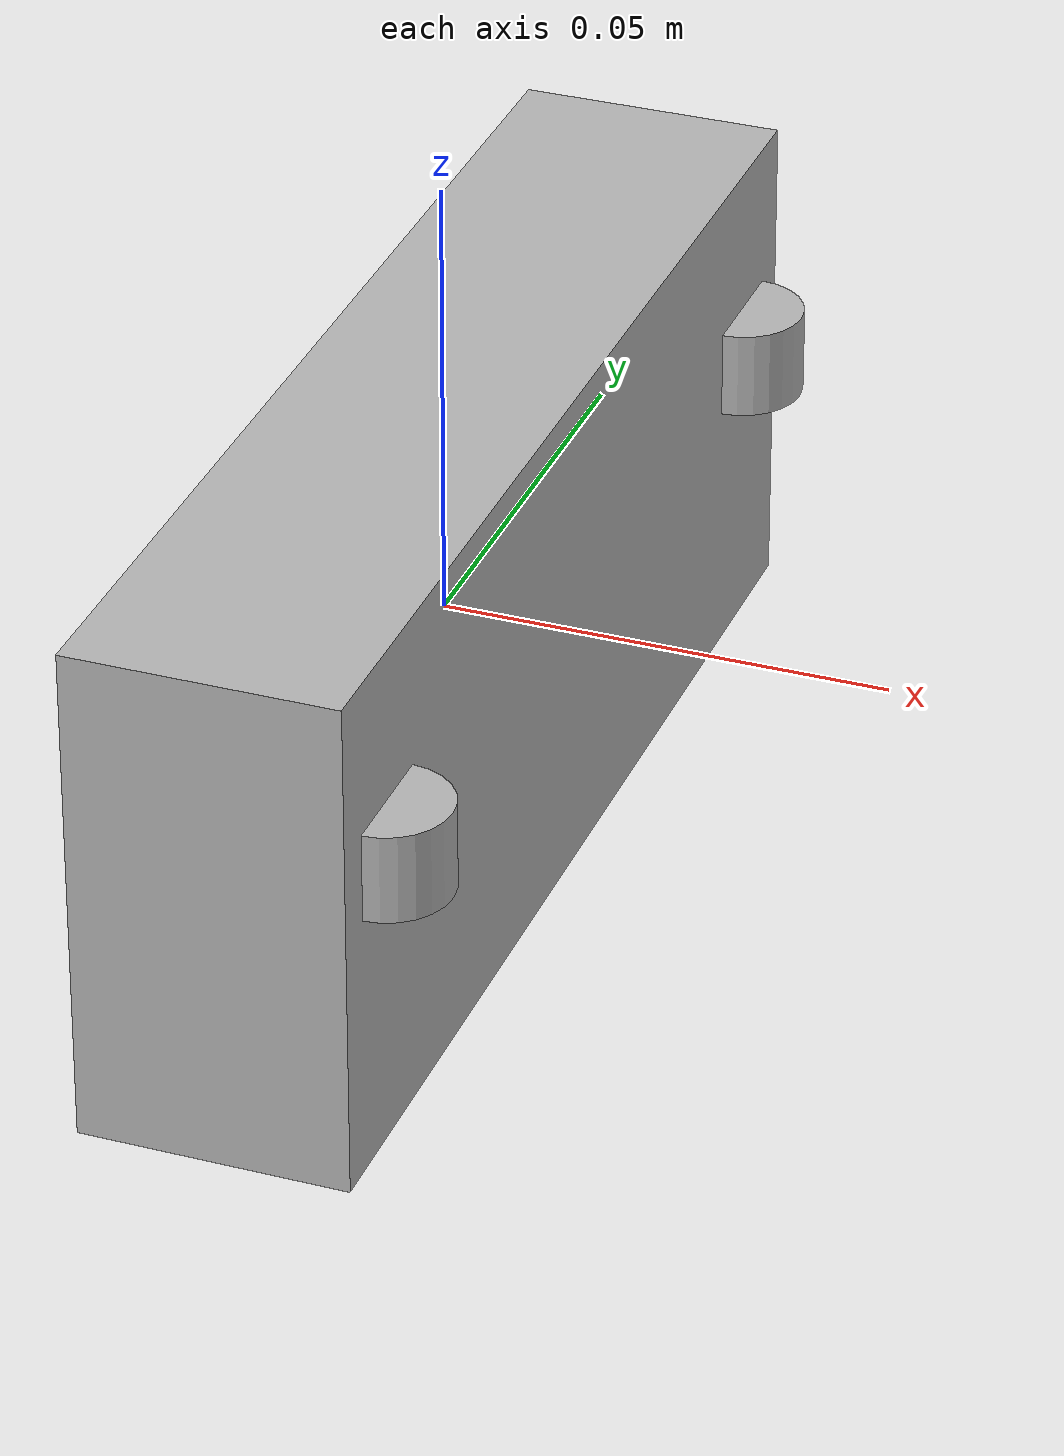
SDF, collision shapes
<sdf version='1.7'>
  <model name='vi_camera'>
    <link name='link'>
      <inertial>
        <pose>0.015 0.018333 0.0065 0 -0 0</pose>
        <mass>3e-05</mass>
        <inertia>
          <ixx>4.08067e-06</ixx>
          <ixy>-2.75038e-20</ixy>
          <ixz>-9.75081e-21</ixz>
          <iyy>4e-06</iyy>
          <iyz>-1.19184e-20</iyz>
          <izz>4.08067e-06</izz>
        </inertia>
      </inertial>
      <collision name='link_fixed_joint_lump__vi_sensor/vi_sensor_link_collision'>
        <pose>0 0 0 0 -0 0</pose>
        <geometry>
          <box>
            <size>0.03 0.133 0.057</size>
          </box>
        </geometry>
      </collision>
      <collision name='link_fixed_joint_lump__vi_sensor/camera_depth_link_collision_1'>
        <pose>0.015 0.055 0.0065 0 -0 0</pose>
        <geometry>
          <cylinder>
            <length>0.01</length>
            <radius>0.007</radius>
          </cylinder>
        </geometry>
        <surface>
          <contact>
            <ode/>
          </contact>
          <friction>
            <ode/>
          </friction>
        </surface>
      </collision>
      <collision name='link_fixed_joint_lump__vi_sensor/camera_left_link_collision_2'>
        <pose>0.015 0.055 0.0065 0 -0 0</pose>
        <geometry>
          <cylinder>
            <length>0.01</length>
            <radius>0.007</radius>
          </cylinder>
        </geometry>
        <surface>
          <contact>
            <ode/>
          </contact>
          <friction>
            <ode/>
          </friction>
        </surface>
      </collision>
      <collision name='link_fixed_joint_lump__vi_sensor/camera_right_link_collision_3'>
        <pose>0.015 -0.055 0.0065 0 -0 0</pose>
        <geometry>
          <cylinder>
            <length>0.01</length>
            <radius>0.007</radius>
          </cylinder>
        </geometry>
      </collision>
      <visual name='link_fixed_joint_lump__vi_sensor/vi_sensor_link_visual'>
        <pose>0 0 0 0 -0 0</pose>
        <geometry>
          <mesh>
            <scale>1 1 1</scale>
            <uri>model://vi_camera/meshes/vi_camera.dae</uri>
          </mesh>
        </geometry>
      </visual>
      <visual name='link_fixed_joint_lump__vi_sensor/camera_left_link_visual_1'>
        <pose>0.015 0.055 0.0065 0 -0 0</pose>
        <geometry>
          <cylinder>
            <length>0.01</length>
            <radius>0.007</radius>
          </cylinder>
        </geometry>
      </visual>
      <visual name='link_fixed_joint_lump__vi_sensor/camera_right_link_visual_2'>
        <pose>0.015 -0.055 0.0065 0 -0 0</pose>
        <geometry>
          <cylinder>
            <length>0.01</length>
            <radius>0.007</radius>
          </cylinder>
        </geometry>
      </visual>
      <sensor name='vi_sensor_camera_depth' type='depth'>
        <always_on>1</always_on>
        <update_rate>30</update_rate>
        <camera>
          <horizontal_fov>2</horizontal_fov>
          <image>
            <format>L8</format>
            <width>640</width>
            <height>480</height>
          </image>
          <clip>
            <near>0.01</near>
            <far>10</far>
          </clip>
        </camera>
        <plugin name='vi_sensor_camera_depth' filename='libgazebo_ros_openni_kinect.so'>
          <robotNamespace>vi_sensor</robotNamespace>
          <alwaysOn>1</alwaysOn>
          <baseline>0.11</baseline>
          <updateRate>30.0</updateRate>
          <cameraName>camera_depth</cameraName>
          <imageTopicName>camera/image_raw</imageTopicName>
          <cameraInfoTopicName>camera/camera_info</cameraInfoTopicName>
          <depthImageTopicName>depth/disparity</depthImageTopicName>
          <depthImageCameraInfoTopicName>depth/camera_info</depthImageCameraInfoTopicName>
          <pointCloudTopicName>depth/points</pointCloudTopicName>
          <frameName>camera_depth_optical_center_link</frameName>
          <pointCloudCutoff>0.5</pointCloudCutoff>
          <pointCloudCutoffMax>10.0</pointCloudCutoffMax>
          <distortionK1>0.0</distortionK1>
          <distortionK2>0.0</distortionK2>
          <distortionK3>0.0</distortionK3>
          <distortionT1>0.0</distortionT1>
          <distortionT2>0.0</distortionT2>
        </plugin>
        <pose>0.015 0.055 0.0065 0 -0 0</pose>
      </sensor>
      <sensor name='vi_sensor_stereo_camera' type='multicamera'>
        <update_rate>30</update_rate>
        <camera name='left'>
          <pose>0 0 0 0 -0 0</pose>
          <horizontal_fov>1.39626</horizontal_fov>
          <image>
            <width>752</width>
            <height>480</height>
            <format>L8</format>
          </image>
          <clip>
            <near>0.02</near>
            <far>30</far>
          </clip>
          <noise>
            <type>gaussian</type>
            <mean>0</mean>
            <stddev>0.007</stddev>
          </noise>
        </camera>
        <camera name='right'>
          <pose>0 -0.11 0 0 -0 0</pose>
          <horizontal_fov>1.39626</horizontal_fov>
          <image>
            <width>752</width>
            <height>480</height>
            <format>L8</format>
          </image>
          <clip>
            <near>0.02</near>
            <far>30</far>
          </clip>
          <noise>
            <type>gaussian</type>
            <mean>0</mean>
            <stddev>0.007</stddev>
          </noise>
        </camera>
        <plugin name='vi_sensor_stereo_camera_controller' filename='libgazebo_ros_multicamera.so'>
          <alwaysOn>1</alwaysOn>
          <updateRate>0.0</updateRate>
          <cameraName>vi_sensor</cameraName>
          <imageTopicName>image_raw</imageTopicName>
          <cameraInfoTopicName>camera_info</cameraInfoTopicName>
          <frameName>vi_sensor/camera_left_link</frameName>
          <hackBaseline>0.11</hackBaseline>
          <distortionK1>0.0</distortionK1>
          <distortionK2>0.0</distortionK2>
          <distortionK3>0.0</distortionK3>
          <distortionT1>0.0</distortionT1>
          <distortionT2>0.0</distortionT2>
        </plugin>
        <pose>0.015 0.055 0.0065 0 -0 0</pose>
      </sensor>
    </link>
    <joint name='vi_sensor/imu_joint' type='revolute'>
      <pose relative_to='link'>0 0 0 0 -0 0</pose>
      <parent>link</parent>
      <child>vi_sensor/imu_link</child>
      <axis>
        <xyz>1 0 0</xyz>
        <limit>
          <lower>0</lower>
          <upper>0</upper>
          <effort>0</effort>
          <velocity>0</velocity>
        </limit>
        <dynamics>
          <spring_reference>0</spring_reference>
          <spring_stiffness>0</spring_stiffness>
        </dynamics>
      </axis>
    </joint>
    <link name='vi_sensor/imu_link'>
      <pose relative_to='vi_sensor/imu_joint'>0 0 0 0 -0 0</pose>
      <inertial>
        <pose>0 0 0 0 -0 0</pose>
        <mass>0.015</mass>
        <inertia>
          <ixx>1e-05</ixx>
          <ixy>0</ixy>
          <ixz>0</ixz>
          <iyy>1e-05</iyy>
          <iyz>0</iyz>
          <izz>1e-05</izz>
        </inertia>
      </inertial>
      <gravity>1</gravity>
      <sensor name='vi_sensor_imu' type='imu'>
        <always_on>1</always_on>
        <update_rate>100</update_rate>
        <plugin name='vi_sensor_imu_controller' filename='libgazebo_ros_imu_sensor.so'>
          <robotNamespace>vi_sensor</robotNamespace>
          <topicName>imu</topicName>
          <frameName>imu_link</frameName>
          <updateRateHZ>100.0</updateRateHZ>
          <gaussianNoise>0.0</gaussianNoise>
          <xyzOffset>0 0 0</xyzOffset>
          <rpyOffset>0 0 0</rpyOffset>
          <initialOrientationAsReference>0</initialOrientationAsReference>
        </plugin>
        <pose>0 0 0 0 -0 0</pose>
      </sensor>
    </link>
  </model>
</sdf>
